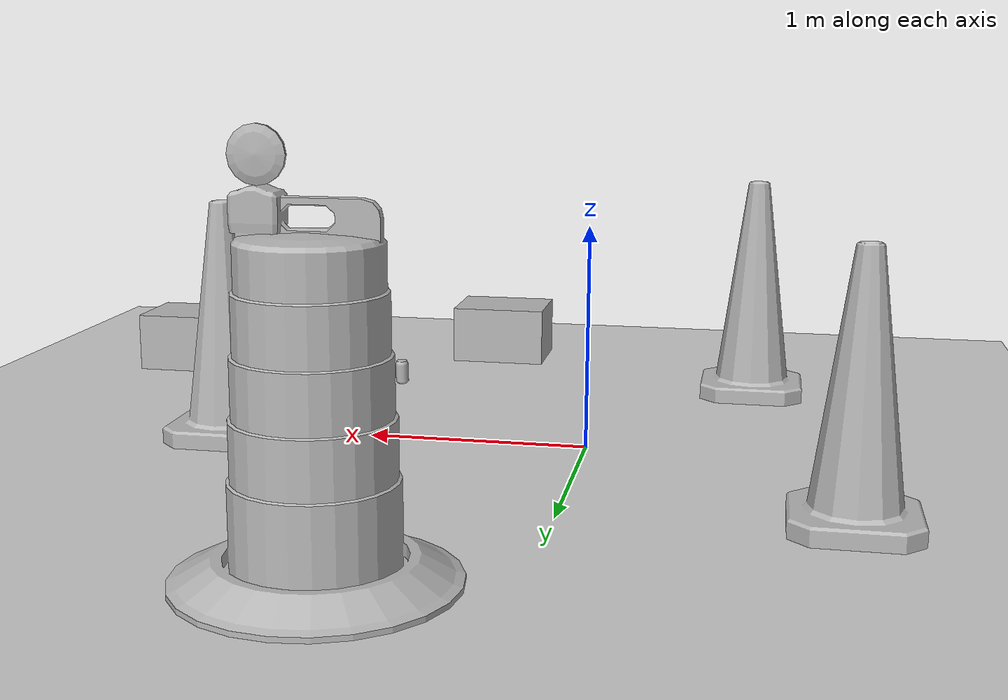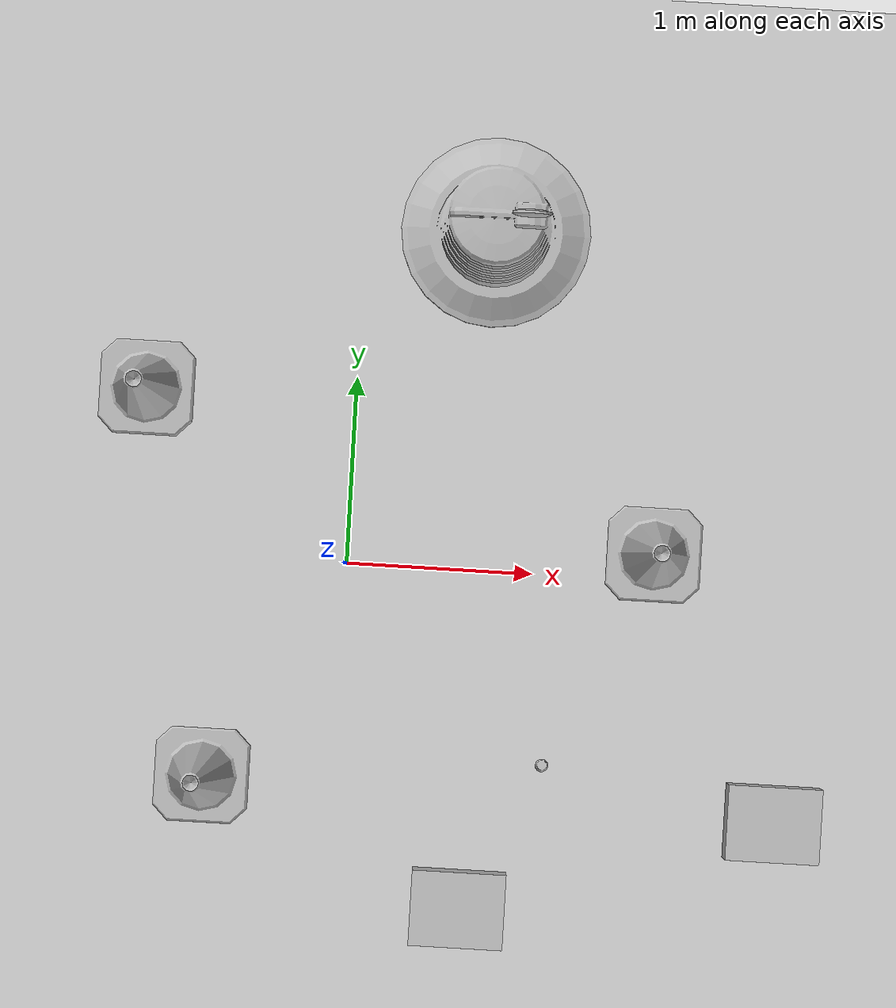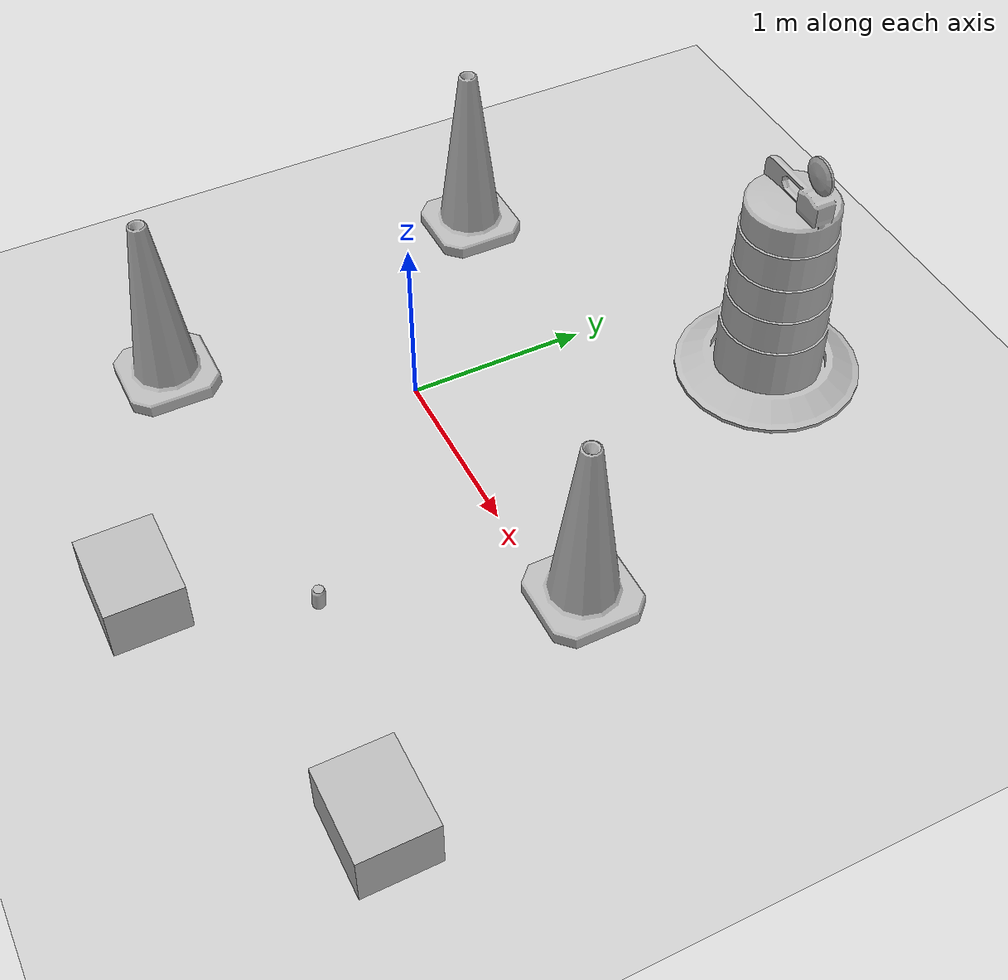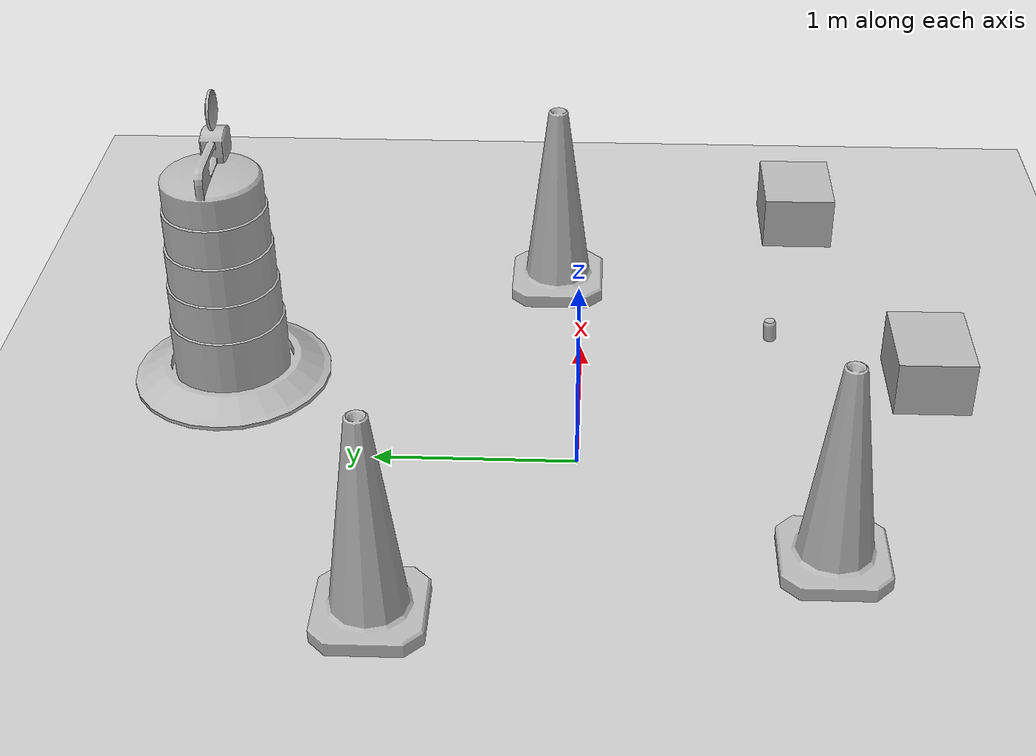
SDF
<sdf version="1.7">
 <world name="default">
  <light name="sun" type="directional">
   <pose>0 0 10 0 -0 0</pose>
   <diffuse>0.8 0.8 0.8 1</diffuse>
   <specular>0.2 0.2 0.2 1</specular>
   <attenuation>
    <range>1000</range>
    <constant>0.9</constant>
    <linear>0.01</linear>
    <quadratic>0.001</quadratic>
   </attenuation>
   <direction>-0.5 0.1 -0.9</direction>
   <spot><inner_angle>0</inner_angle><outer_angle>0</outer_angle><falloff>0</falloff></spot>
  </light>
  <model name="ground_plane">
   <static>1</static>
   <link name="link">
    <collision name="collision">
     <geometry><plane><normal>0 0 1</normal><size>100 100</size></plane></geometry>
     <surface>
      <contact><collide_bitmask>65535</collide_bitmask></contact>
      <friction><ode><mu>100</mu><mu2>50</mu2></ode></friction>
     </surface>
    </collision>
    <visual name="visual">
     <cast_shadows>0</cast_shadows>
     <geometry><plane><normal>0 0 1</normal><size>100 100</size></plane></geometry>
     <material>
      <script><uri>file://media/materials/scripts/gazebo.material</uri><name>Gazebo/Grey</name></script>
     </material>
    </visual>
   </link>
  </model>
  <gravity>0 0 -9.8</gravity>
  <magnetic_field>6e-06 2.3e-05 -4.2e-05</magnetic_field>
  <atmosphere type="adiabatic"/>
  <physics type="ode">
   <max_step_size>0.001</max_step_size>
   <real_time_factor>1</real_time_factor>
   <real_time_update_rate>1000</real_time_update_rate>
  </physics>
  <scene><ambient>0.4 0.4 0.4 1</ambient><background>0.7 0.7 0.7 1</background><shadows>1</shadows></scene>
  <audio><device>default</device></audio>
  <spherical_coordinates>
   <surface_model>EARTH_WGS84</surface_model>
   <latitude_deg>0</latitude_deg>
   <longitude_deg>0</longitude_deg>
   <elevation>0</elevation>
   <heading_deg>0</heading_deg>
  </spherical_coordinates>
  <model name="Construction Cone">
   <link name="link">
    <collision name="collision">
     <geometry>
      <mesh><scale>10 10 10</scale><uri>model://construction_cone/meshes/construction_cone.dae</uri></mesh>
     </geometry>
    </collision>
    <visual name="visual">
     <geometry>
      <mesh><scale>10 10 10</scale><uri>model://construction_cone/meshes/construction_cone.dae</uri></mesh>
     </geometry>
    </visual>
    <inertial>
     <inertia><ixx>1</ixx><ixy>0</ixy><ixz>0</ixz><iyy>1</iyy><iyz>0</iyz><izz>1</izz></inertia>
     <mass>1</mass>
    </inertial>
   </link>
   <pose>-1.12512 0.879075 -9e-06 0 -0 0</pose>
  </model>
  <model name="Construction Barrel">
   <link name="link">
    <inertial>
     <pose>0 0 0.4 0 -0 0</pose>
     <mass>500</mass>
     <inertia><ixx>51.2096</ixx><iyy>51.2096</iyy><izz>25</izz><ixy>0</ixy><ixz>0</ixz><iyz>0</iyz></inertia>
    </inertial>
    <collision name="collision">
     <geometry><mesh><uri>model://construction_barrel/meshes/construction_barrel.dae</uri></mesh></geometry>
    </collision>
    <visual name="visual">
     <geometry><mesh><uri>model://construction_barrel/meshes/construction_barrel.dae</uri></mesh></geometry>
    </visual>
   </link>
   <pose>0.696034 1.82048 -1e-06 2e-06 -1e-06 -1.3e-05</pose>
  </model>
  <model name="Construction Cone_0">
   <link name="link">
    <collision name="collision">
     <geometry>
      <mesh><scale>10 10 10</scale><uri>model://construction_cone/meshes/construction_cone.dae</uri></mesh>
     </geometry>
    </collision>
    <visual name="visual">
     <geometry>
      <mesh><scale>10 10 10</scale><uri>model://construction_cone/meshes/construction_cone.dae</uri></mesh>
     </geometry>
    </visual>
    <inertial>
     <inertia><ixx>1</ixx><ixy>0</ixy><ixz>0</ixz><iyy>1</iyy><iyz>0</iyz><izz>1</izz></inertia>
     <mass>1</mass>
    </inertial>
   </link>
   <pose>1.64266 0.143031 -0 0 -1e-06 0</pose>
  </model>
  <model name="Construction Cone_1">
   <link name="link">
    <collision name="collision">
     <geometry>
      <mesh><scale>10 10 10</scale><uri>model://construction_cone/meshes/construction_cone.dae</uri></mesh>
     </geometry>
    </collision>
    <visual name="visual">
     <geometry>
      <mesh><scale>10 10 10</scale><uri>model://construction_cone/meshes/construction_cone.dae</uri></mesh>
     </geometry>
    </visual>
    <inertial>
     <inertia><ixx>1</ixx><ixy>0</ixy><ixz>0</ixz><iyy>1</iyy><iyz>0</iyz><izz>1</izz></inertia>
     <mass>1</mass>
    </inertial>
   </link>
   <pose>-0.708725 -1.17759 -0 0 -1e-06 0</pose>
  </model>
  <model name="coke_can">
   <link name="link">
    <inertial>
     <pose>0 0 0.06 0 -0 0</pose>
     <mass>0.39</mass>
     <inertia>
      <ixx>0.00055575</ixx>
      <ixy>0</ixy>
      <ixz>0</ixz>
      <iyy>0.00055575</iyy>
      <iyz>0</iyz>
      <izz>0.0001755</izz>
     </inertia>
    </inertial>
    <collision name="collision">
     <pose>0.003937 0.004724 -0.18 0 -0 0</pose>
     <geometry><mesh><uri>model://coke_can/meshes/coke_can.dae</uri></mesh></geometry>
     <surface>
      <friction><ode><mu>1</mu><mu2>1</mu2></ode></friction>
      <contact><ode><kp>1e+07</kp><kd>1</kd><min_depth>0.001</min_depth><max_vel>0.1</max_vel></ode></contact>
     </surface>
    </collision>
    <visual name="visual">
     <pose>0.003937 0.004724 -0.18 0 -0 0</pose>
     <geometry><mesh><uri>model://coke_can/meshes/coke_can.dae</uri></mesh></geometry>
    </visual>
   </link>
   <pose>1.10794 -1.02218 -0.002753 -0.060728 0.003852 -0.000542</pose>
  </model>
  <model name="cardboard_box">
   <pose>0.700289 -1.80274 0.149 0 -0 0</pose>
   <link name="link">
    <inertial>
     <mass>2</mass>
     <inertia>
      <ixx>0.0416667</ixx>
      <ixy>0</ixy>
      <ixz>0</ixz>
      <iyy>0.0566667</iyy>
      <iyz>0</iyz>
      <izz>0.0683333</izz>
     </inertia>
    </inertial>
    <collision name="collision">
     <geometry><box><size>0.5 0.4 0.3</size></box></geometry>
     <surface>
      <friction><ode><mu>1</mu><mu2>1</mu2></ode></friction>
      <contact><ode><kp>1e+07</kp><kd>1</kd><min_depth>0.001</min_depth><max_vel>0.1</max_vel></ode></contact>
     </surface>
    </collision>
    <visual name="visual">
     <pose>0 0 -0.15 0 -0 0</pose>
     <geometry>
      <mesh><uri>model://cardboard_box/meshes/cardboard_box.dae</uri><scale>1.25932 1.00745 0.755591</scale></mesh>
     </geometry>
    </visual>
   </link>
  </model>
  <model name="cardboard_box_0">
   <pose>2.35252 -1.25283 0.149 -0 -0 -0</pose>
   <link name="link">
    <inertial>
     <mass>2</mass>
     <inertia>
      <ixx>0.0416667</ixx>
      <ixy>0</ixy>
      <ixz>0</ixz>
      <iyy>0.0566667</iyy>
      <iyz>0</iyz>
      <izz>0.0683333</izz>
     </inertia>
    </inertial>
    <collision name="collision">
     <geometry><box><size>0.5 0.4 0.3</size></box></geometry>
     <surface>
      <friction><ode><mu>1</mu><mu2>1</mu2></ode></friction>
      <contact><ode><kp>1e+07</kp><kd>1</kd><min_depth>0.001</min_depth><max_vel>0.1</max_vel></ode></contact>
     </surface>
    </collision>
    <visual name="visual">
     <pose>0 0 -0.15 0 -0 0</pose>
     <geometry>
      <mesh><uri>model://cardboard_box/meshes/cardboard_box.dae</uri><scale>1.25932 1.00745 0.755591</scale></mesh>
     </geometry>
    </visual>
   </link>
  </model>
 </world>
</sdf>
